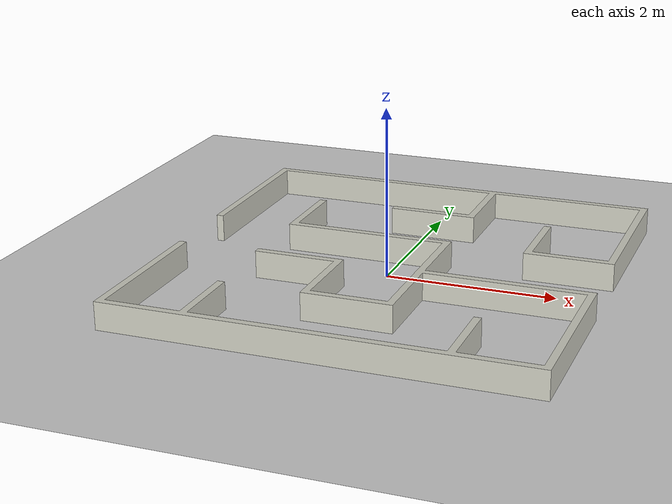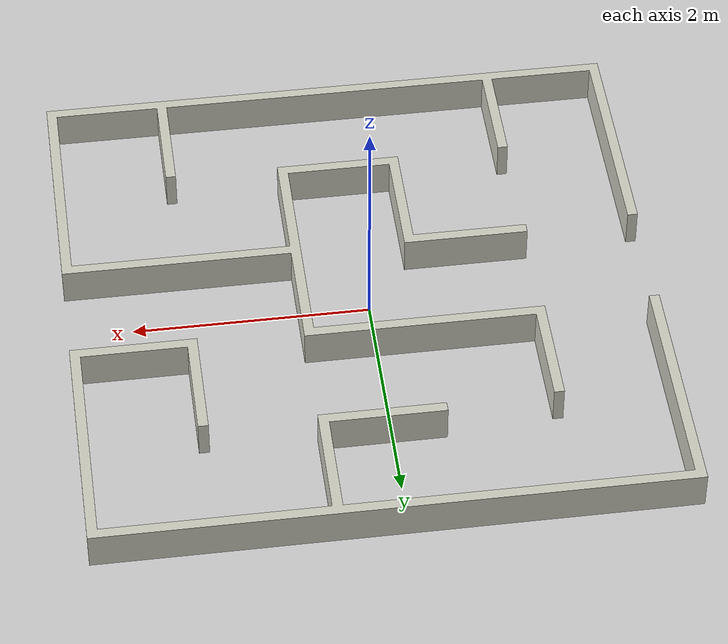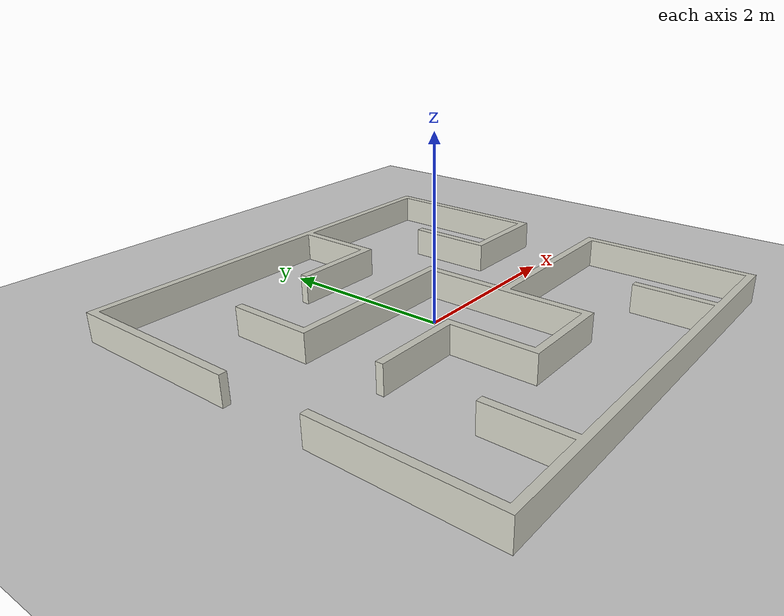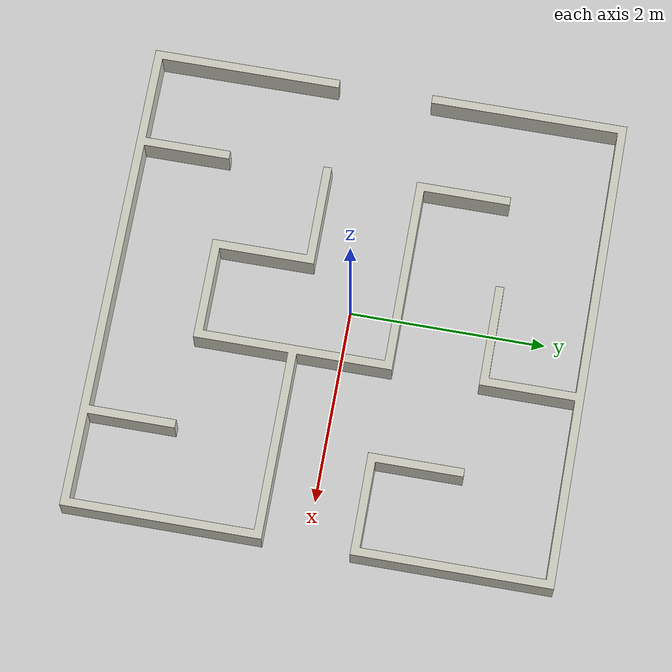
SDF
<?xml version="1.0"?>
<sdf version="1.6">
  <world name="maze5x5">

    <include>
      <uri>model://ground_plane</uri>
    </include>

    <include>
      <uri>model://sun</uri>
    </include>

    <scene>
      <shadows>false</shadows>
    </scene>

    <gui fullscreen='0'>
      <camera name='user_camera'>
        <pose frame=''>0.018972 -0.580281 19.898062 0 1.569796 0</pose>
        <view_controller>orbit</view_controller>
        <projection_type>perspective</projection_type>
      </camera>
    </gui>

    <physics type="ode">
      <real_time_update_rate>1000.0</real_time_update_rate>
      <max_step_size>0.001</max_step_size>
      <real_time_factor>1</real_time_factor>
      <ode>
        <solver>
          <type>quick</type>
          <iters>150</iters>
          <precon_iters>0</precon_iters>
          <sor>1.400000</sor>
          <use_dynamic_moi_rescaling>1</use_dynamic_moi_rescaling>
        </solver>
        <constraints>
          <cfm>0.00001</cfm>
          <erp>0.2</erp>
          <contact_max_correcting_vel>2000.000000</contact_max_correcting_vel>
          <contact_surface_layer>0.01000</contact_surface_layer>
        </constraints>
      </ode>
    </physics>

    <model name="maze5x5">
      <static>1</static>
      <include>
        <uri>model://maze5x5</uri>
      </include>
    </model>

  </world>
</sdf>

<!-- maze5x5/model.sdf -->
<sdf version='1.7'>
  <model name='maze5x5'>
    <link name='link_2'>
      <inertial>
        <mass>1</mass>
        <inertia>
          <ixx>0.166667</ixx>
          <ixy>0</ixy>
          <ixz>0</ixz>
          <iyy>0.166667</iyy>
          <iyz>0</iyz>
          <izz>0.166667</izz>
        </inertia>
        <pose>0 0 0 0 -0 0</pose>
      </inertial>
      <pose>-2.5 2.5 0 -1.5708 0 -1.5708</pose>
      <gravity>1</gravity>
      <self_collide>0</self_collide>
      <kinematic>0</kinematic>
      <enable_wind>0</enable_wind>
      <visual name='visual'>
        <pose>0 0 0 0 -0 0</pose>
        <geometry>
          <mesh>
            <uri>src/kratos_maze/models/maze5x5/maze5x5.obj</uri>
            <scale>0.25 0.45 0.25</scale>
          </mesh>
        </geometry>
        <material>
          <lighting>1</lighting>
          <script>
            <uri>file://media/materials/scripts/gazebo.material</uri>
            <name>Gazebo/PaintedWall</name>
          </script>
          <shader type='pixel'/>
        </material>
        <transparency>0</transparency>
        <cast_shadows>1</cast_shadows>
      </visual>
      <collision name='collision'>
        <laser_retro>0</laser_retro>
        <max_contacts>10</max_contacts>
        <pose>0 0 0 0 -0 0</pose>
        <geometry>
          <mesh>
            <uri>src/kratos_maze/models/maze5x5/maze5x5.obj</uri>
            <scale>0.25 0.45 0.25</scale>
          </mesh>
        </geometry>
        <surface>
          <friction>
            <ode>
              <mu>1</mu>
              <mu2>1</mu2>
              <fdir1>0 0 0</fdir1>
              <slip1>0</slip1>
              <slip2>0</slip2>
            </ode>
            <torsional>
              <coefficient>1</coefficient>
              <patch_radius>0</patch_radius>
              <surface_radius>0</surface_radius>
              <use_patch_radius>1</use_patch_radius>
              <ode>
                <slip>0</slip>
              </ode>
            </torsional>
          </friction>
          <bounce>
            <restitution_coefficient>0</restitution_coefficient>
            <threshold>1e+06</threshold>
          </bounce>
          <contact>
            <collide_without_contact>0</collide_without_contact>
            <collide_without_contact_bitmask>1</collide_without_contact_bitmask>
            <collide_bitmask>1</collide_bitmask>
            <ode>
              <soft_cfm>0</soft_cfm>
              <soft_erp>0.2</soft_erp>
              <kp>1e+13</kp>
              <kd>1</kd>
              <max_vel>0.01</max_vel>
              <min_depth>0</min_depth>
            </ode>
            <bullet>
              <split_impulse>1</split_impulse>
              <split_impulse_penetration_threshold>-0.01</split_impulse_penetration_threshold>
              <soft_cfm>0</soft_cfm>
              <soft_erp>0.2</soft_erp>
              <kp>1e+13</kp>
              <kd>1</kd>
            </bullet>
          </contact>
        </surface>
      </collision>
    </link>
    <static>0</static>
    <allow_auto_disable>1</allow_auto_disable>
  </model>
</sdf>
